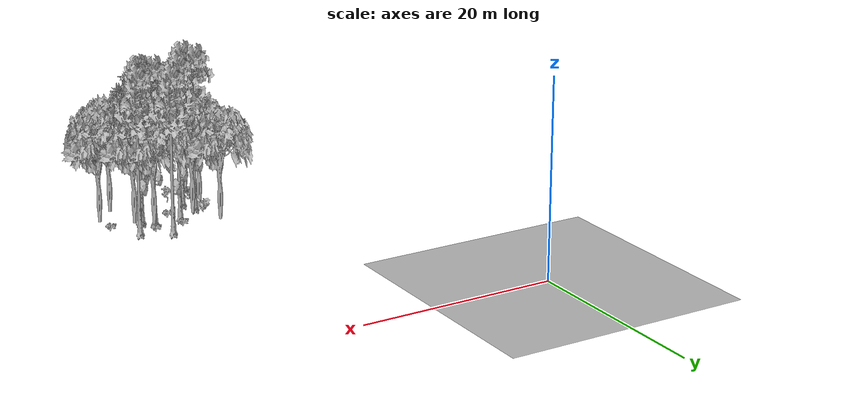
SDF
<sdf version="1.7">
 <world name="default">
  <model name="ground_plane">
   <static>1</static>
   <link name="link">
    <collision name="collision">
     <pose>-50 0 0 0 -0 0</pose>
     <geometry><plane><normal>0 0 1</normal><size>80 80</size></plane></geometry>
     <surface><contact><ode><min_depth>0.01</min_depth><max_vel>0</max_vel></ode></contact></surface>
    </collision>
    <visual name="grass">
     <cast_shadows>0</cast_shadows>
     <geometry>
      <mesh>
       <scale>0.46714285714285714 0.46714285714285714 0.1</scale>
       <uri>file://grass_plane/meshes/grass_plane.dae</uri>
      </mesh>
     </geometry>
    </visual>
   </link>
  </model>
  <model name="Tree 8">
   <static>1</static>
   <pose>26.608993075268216 -34.12208442925174 0 1.57079 -0 0</pose>
   <link name="link">
    <collision name="collision">
     <geometry><mesh><scale>3.5 5 3.5</scale><uri>model://tree_2/meshes/tree_2.obj</uri></mesh></geometry>
    </collision>
    <visual name="visual">
     <geometry><mesh><scale>3.5 5 3.5</scale><uri>model://tree_2/meshes/tree_2.obj</uri></mesh></geometry>
    </visual>
   </link>
  </model>
  <model name="Tree 23">
   <static>1</static>
   <pose>22.057142579652904 -33.21811231558036 0 1.57079 -0 0</pose>
   <link name="link">
    <collision name="collision">
     <geometry><mesh><scale>3.5 5 3.5</scale><uri>model://tree_9/meshes/tree_9.obj</uri></mesh></geometry>
    </collision>
    <visual name="visual">
     <geometry><mesh><scale>3.5 5 3.5</scale><uri>model://tree_9/meshes/tree_9.obj</uri></mesh></geometry>
    </visual>
   </link>
  </model>
  <model name="Tree 31">
   <static>1</static>
   <pose>26.013760197732935 -34.41507662786235 0 1.57079 -0 0</pose>
   <link name="link">
    <collision name="collision">
     <geometry><mesh><scale>3.5 5 3.5</scale><uri>model://tree_9/meshes/tree_9.obj</uri></mesh></geometry>
    </collision>
    <visual name="visual">
     <geometry><mesh><scale>3.5 5 3.5</scale><uri>model://tree_9/meshes/tree_9.obj</uri></mesh></geometry>
    </visual>
   </link>
  </model>
  <model name="Tree 80">
   <static>1</static>
   <pose>20.057824724060055 -36.83166351726702 0 1.57079 -0 0</pose>
   <link name="link">
    <collision name="collision">
     <geometry><mesh><scale>3.5 5 3.5</scale><uri>model://tree_9/meshes/tree_9.obj</uri></mesh></geometry>
    </collision>
    <visual name="visual">
     <geometry><mesh><scale>3.5 5 3.5</scale><uri>model://tree_9/meshes/tree_9.obj</uri></mesh></geometry>
    </visual>
   </link>
  </model>
  <model name="Tree 93">
   <static>1</static>
   <pose>29.513565565741786 -36.17519396368556 0 1.57079 -0 0</pose>
   <link name="link">
    <collision name="collision">
     <geometry><mesh><scale>3.5 5 3.5</scale><uri>model://tree_2/meshes/tree_2.obj</uri></mesh></geometry>
    </collision>
    <visual name="visual">
     <geometry><mesh><scale>3.5 5 3.5</scale><uri>model://tree_2/meshes/tree_2.obj</uri></mesh></geometry>
    </visual>
   </link>
  </model>
  <model name="Tree 180">
   <static>1</static>
   <pose>25.87512986330519 -34.13573284777139 0 1.57079 -0 0</pose>
   <link name="link">
    <collision name="collision">
     <geometry><mesh><scale>3.5 5 3.5</scale><uri>model://tree_9/meshes/tree_9.obj</uri></mesh></geometry>
    </collision>
    <visual name="visual">
     <geometry><mesh><scale>3.5 5 3.5</scale><uri>model://tree_9/meshes/tree_9.obj</uri></mesh></geometry>
    </visual>
   </link>
  </model>
  <model name="Tree 244">
   <static>1</static>
   <pose>18.660487672352303 -30.770483917460467 0 1.57079 -0 0</pose>
   <link name="link">
    <collision name="collision">
     <geometry><mesh><scale>3.5 5 3.5</scale><uri>model://tree_2/meshes/tree_2.obj</uri></mesh></geometry>
    </collision>
    <visual name="visual">
     <geometry><mesh><scale>3.5 5 3.5</scale><uri>model://tree_2/meshes/tree_2.obj</uri></mesh></geometry>
    </visual>
   </link>
  </model>
  <model name="Tree 267">
   <static>1</static>
   <pose>20.277341221381718 -33.8229526199126 0 1.57079 -0 0</pose>
   <link name="link">
    <collision name="collision">
     <geometry><mesh><scale>3.5 5 3.5</scale><uri>model://tree_2/meshes/tree_2.obj</uri></mesh></geometry>
    </collision>
    <visual name="visual">
     <geometry><mesh><scale>3.5 5 3.5</scale><uri>model://tree_2/meshes/tree_2.obj</uri></mesh></geometry>
    </visual>
   </link>
  </model>
  <model name="Tree 307">
   <static>1</static>
   <pose>18.962970772964113 -34.998566003211195 0 1.57079 -0 0</pose>
   <link name="link">
    <collision name="collision">
     <geometry><mesh><scale>3.5 5 3.5</scale><uri>model://tree_2/meshes/tree_2.obj</uri></mesh></geometry>
    </collision>
    <visual name="visual">
     <geometry><mesh><scale>3.5 5 3.5</scale><uri>model://tree_2/meshes/tree_2.obj</uri></mesh></geometry>
    </visual>
   </link>
  </model>
  <model name="Tree 346">
   <static>1</static>
   <pose>27.40583711957113 -38.45389536762071 0 1.57079 -0 0</pose>
   <link name="link">
    <collision name="collision">
     <geometry><mesh><scale>3.5 5 3.5</scale><uri>model://tree_2/meshes/tree_2.obj</uri></mesh></geometry>
    </collision>
    <visual name="visual">
     <geometry><mesh><scale>3.5 5 3.5</scale><uri>model://tree_2/meshes/tree_2.obj</uri></mesh></geometry>
    </visual>
   </link>
  </model>
  <model name="Tree 362">
   <static>1</static>
   <pose>19.781537838519817 -37.801905564913405 0 1.57079 -0 0</pose>
   <link name="link">
    <collision name="collision">
     <geometry><mesh><scale>3.5 5 3.5</scale><uri>model://tree_2/meshes/tree_2.obj</uri></mesh></geometry>
    </collision>
    <visual name="visual">
     <geometry><mesh><scale>3.5 5 3.5</scale><uri>model://tree_2/meshes/tree_2.obj</uri></mesh></geometry>
    </visual>
   </link>
  </model>
  <model name="Tree 400">
   <static>1</static>
   <pose>24.814946693096765 -33.31937629886938 0 1.57079 -0 0</pose>
   <link name="link">
    <collision name="collision">
     <geometry><mesh><scale>3.5 5 3.5</scale><uri>model://tree_9/meshes/tree_9.obj</uri></mesh></geometry>
    </collision>
    <visual name="visual">
     <geometry><mesh><scale>3.5 5 3.5</scale><uri>model://tree_9/meshes/tree_9.obj</uri></mesh></geometry>
    </visual>
   </link>
  </model>
  <model name="Tree 435">
   <static>1</static>
   <pose>19.457840748951554 -35.11245965881678 0 1.57079 -0 0</pose>
   <link name="link">
    <collision name="collision">
     <geometry><mesh><scale>3.5 5 3.5</scale><uri>model://tree_9/meshes/tree_9.obj</uri></mesh></geometry>
    </collision>
    <visual name="visual">
     <geometry><mesh><scale>3.5 5 3.5</scale><uri>model://tree_9/meshes/tree_9.obj</uri></mesh></geometry>
    </visual>
   </link>
  </model>
  <model name="Tree 567">
   <static>1</static>
   <pose>24.397750278930886 -29.88638450723016 0 1.57079 -0 0</pose>
   <link name="link">
    <collision name="collision">
     <geometry><mesh><scale>3.5 5 3.5</scale><uri>model://tree_9/meshes/tree_9.obj</uri></mesh></geometry>
    </collision>
    <visual name="visual">
     <geometry><mesh><scale>3.5 5 3.5</scale><uri>model://tree_9/meshes/tree_9.obj</uri></mesh></geometry>
    </visual>
   </link>
  </model>
  <model name="Tree 569">
   <static>1</static>
   <pose>25.0461531154536 -32.80676113715981 0 1.57079 -0 0</pose>
   <link name="link">
    <collision name="collision">
     <geometry><mesh><scale>3.5 5 3.5</scale><uri>model://tree_2/meshes/tree_2.obj</uri></mesh></geometry>
    </collision>
    <visual name="visual">
     <geometry><mesh><scale>3.5 5 3.5</scale><uri>model://tree_2/meshes/tree_2.obj</uri></mesh></geometry>
    </visual>
   </link>
  </model>
  <model name="Tree 584">
   <static>1</static>
   <pose>27.34093846873874 -31.349701932110364 0 1.57079 -0 0</pose>
   <link name="link">
    <collision name="collision">
     <geometry><mesh><scale>3.5 5 3.5</scale><uri>model://tree_9/meshes/tree_9.obj</uri></mesh></geometry>
    </collision>
    <visual name="visual">
     <geometry><mesh><scale>3.5 5 3.5</scale><uri>model://tree_9/meshes/tree_9.obj</uri></mesh></geometry>
    </visual>
   </link>
  </model>
  <model name="Tree 604">
   <static>1</static>
   <pose>18.2178559373028 -39.90108631888865 0 1.57079 -0 0</pose>
   <link name="link">
    <collision name="collision">
     <geometry><mesh><scale>3.5 5 3.5</scale><uri>model://tree_2/meshes/tree_2.obj</uri></mesh></geometry>
    </collision>
    <visual name="visual">
     <geometry><mesh><scale>3.5 5 3.5</scale><uri>model://tree_2/meshes/tree_2.obj</uri></mesh></geometry>
    </visual>
   </link>
  </model>
  <model name="Bush 3">
   <static>1</static>
   <pose>21.378390742366477 -37.80837367047428 0 1.57079 -0 0</pose>
   <link name="link">
    <collision name="collision">
     <geometry><mesh><scale>2 2 2</scale><uri>model://bush_5/meshes/bush_5.obj</uri></mesh></geometry>
     <surface><contact><collide_without_contact>false</collide_without_contact></contact></surface>
    </collision>
    <visual name="visual">
     <geometry><mesh><scale>2 2 2</scale><uri>model://bush_5/meshes/bush_5.obj</uri></mesh></geometry>
    </visual>
   </link>
  </model>
  <model name="Bush 139">
   <static>1</static>
   <pose>25.438575700231056 -31.712986559433823 0 1.57079 -0 0</pose>
   <link name="link">
    <collision name="collision">
     <geometry><mesh><scale>2 2 2</scale><uri>model://bush_2/meshes/bush_2.obj</uri></mesh></geometry>
     <surface><contact><collide_without_contact>false</collide_without_contact></contact></surface>
    </collision>
    <visual name="visual">
     <geometry><mesh><scale>2 2 2</scale><uri>model://bush_2/meshes/bush_2.obj</uri></mesh></geometry>
    </visual>
   </link>
  </model>
  <model name="Bush 342">
   <static>1</static>
   <pose>22.718242100867243 -34.83419913232893 0 1.57079 -0 0</pose>
   <link name="link">
    <collision name="collision">
     <geometry><mesh><scale>2 2 2</scale><uri>model://bush_2/meshes/bush_2.obj</uri></mesh></geometry>
     <surface><contact><collide_without_contact>false</collide_without_contact></contact></surface>
    </collision>
    <visual name="visual">
     <geometry><mesh><scale>2 2 2</scale><uri>model://bush_2/meshes/bush_2.obj</uri></mesh></geometry>
    </visual>
   </link>
  </model>
  <model name="Bush 362">
   <static>1</static>
   <pose>19.465034871909268 -33.31802306527421 0 1.57079 -0 0</pose>
   <link name="link">
    <collision name="collision">
     <geometry><mesh><scale>2 2 2</scale><uri>model://bush_0/meshes/bush_0.obj</uri></mesh></geometry>
     <surface><contact><collide_without_contact>false</collide_without_contact></contact></surface>
    </collision>
    <visual name="visual">
     <geometry><mesh><scale>2 2 2</scale><uri>model://bush_0/meshes/bush_0.obj</uri></mesh></geometry>
    </visual>
   </link>
  </model>
  <model name="Bush 434">
   <static>1</static>
   <pose>22.39708435930209 -31.833067529555656 0 1.57079 -0 0</pose>
   <link name="link">
    <collision name="collision">
     <geometry><mesh><scale>2 2 2</scale><uri>model://bush_2/meshes/bush_2.obj</uri></mesh></geometry>
     <surface><contact><collide_without_contact>false</collide_without_contact></contact></surface>
    </collision>
    <visual name="visual">
     <geometry><mesh><scale>2 2 2</scale><uri>model://bush_2/meshes/bush_2.obj</uri></mesh></geometry>
    </visual>
   </link>
  </model>
  <model name="Bush 478">
   <static>1</static>
   <pose>18.950251564154584 -37.65880460441518 0 1.57079 -0 0</pose>
   <link name="link">
    <collision name="collision">
     <geometry><mesh><scale>2 2 2</scale><uri>model://bush_4/meshes/bush_4.obj</uri></mesh></geometry>
     <surface><contact><collide_without_contact>false</collide_without_contact></contact></surface>
    </collision>
    <visual name="visual">
     <geometry><mesh><scale>2 2 2</scale><uri>model://bush_4/meshes/bush_4.obj</uri></mesh></geometry>
    </visual>
   </link>
  </model>
  <model name="Bush 543">
   <static>1</static>
   <pose>29.26147793801941 -34.20952805116941 0 1.57079 -0 0</pose>
   <link name="link">
    <collision name="collision">
     <geometry><mesh><scale>2 2 2</scale><uri>model://bush_2/meshes/bush_2.obj</uri></mesh></geometry>
     <surface><contact><collide_without_contact>false</collide_without_contact></contact></surface>
    </collision>
    <visual name="visual">
     <geometry><mesh><scale>2 2 2</scale><uri>model://bush_2/meshes/bush_2.obj</uri></mesh></geometry>
    </visual>
   </link>
  </model>
 </world>
</sdf>
